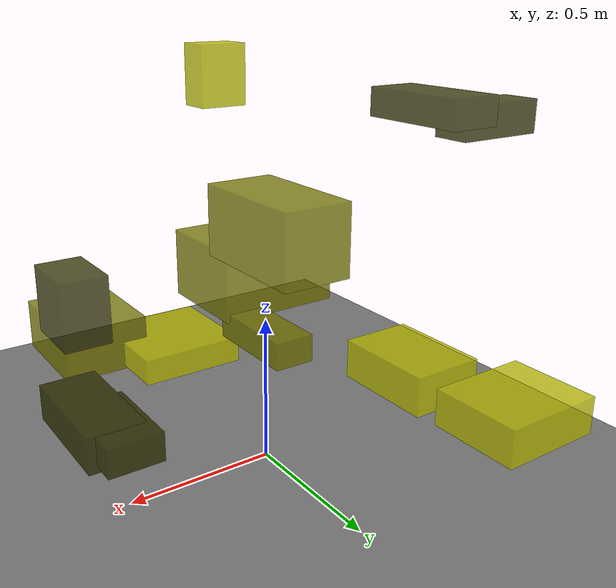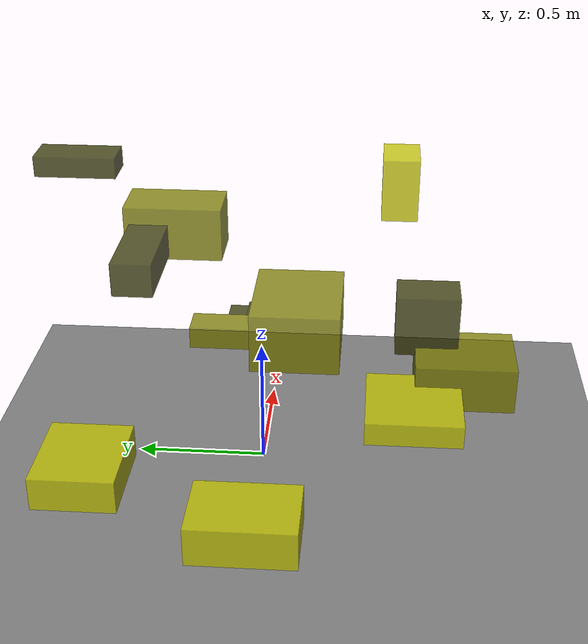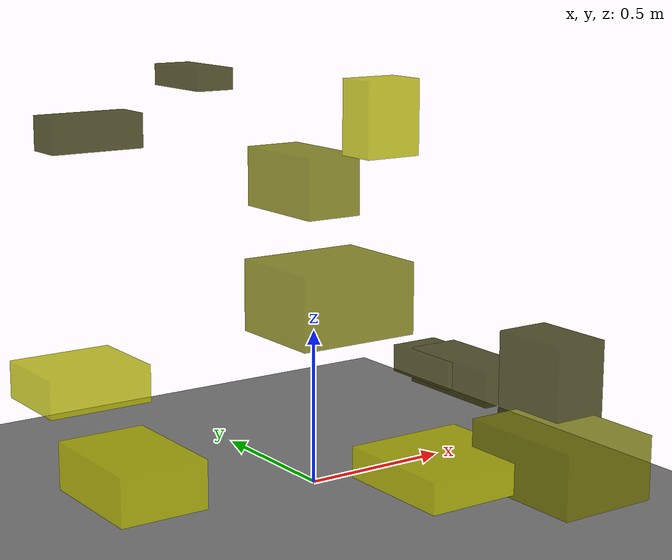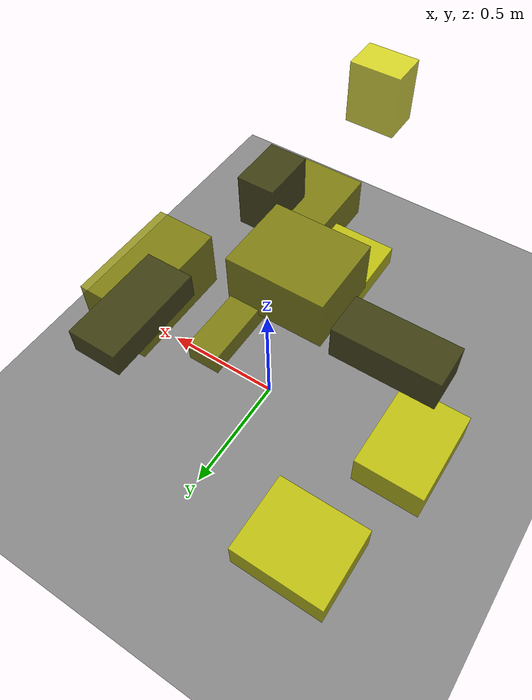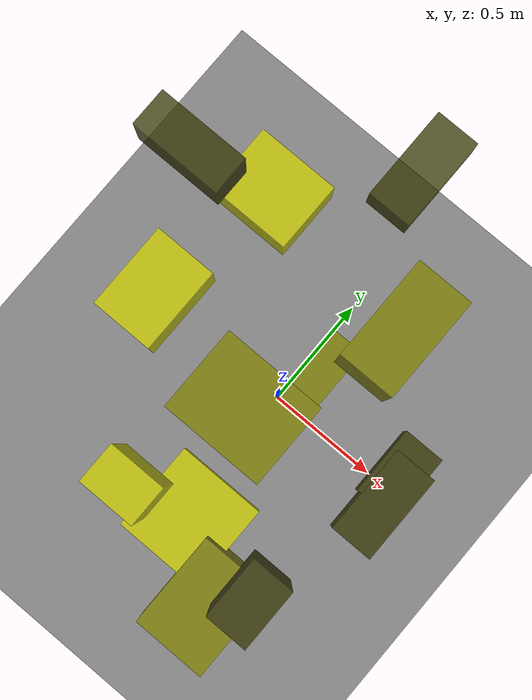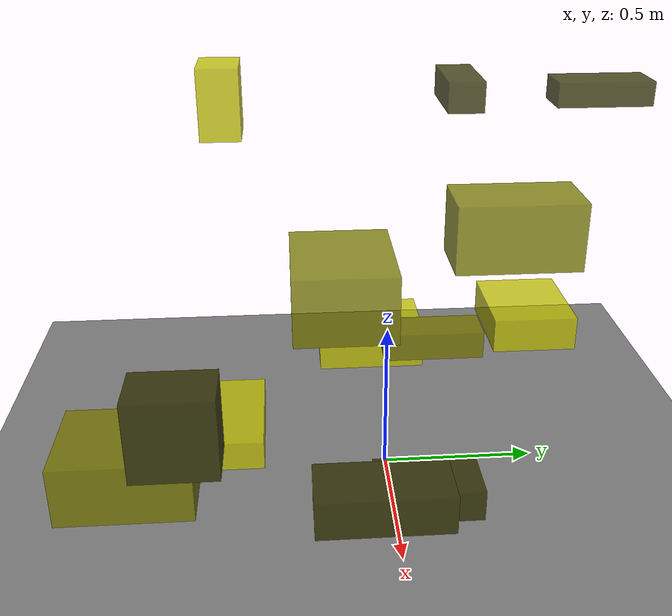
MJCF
<?xml version="1.0"?>
<mujoco model="obstacle_scene">
  <compiler angle="radian" coordinate="local"/>
  <option timestep="0.001" gravity="0 0 -9.81"/>

  <asset>
    <material name="obstacle_mat" rgba="0.8 0.8 0.0 0.8"/>
    <material name="ground_mat" rgba="0.5 0.5 0.5 1"/>
  </asset>

  <worldbody>
    <!-- Ground plane -->
    <geom name="ground" type="plane" size="3 3 0.1" material="ground_mat"/>

    <!-- Obstacles -->
    <body name="obstacle_0" pos="-0.057088 0.630143 1.251379">
      <geom name="obs_0" type="box" size="0.066839 0.142492 0.036172" rgba="0.2 0.2 0.0 0.8"/>
    </body>
    <body name="obstacle_1" pos="-0.043134 -0.141980 0.642639">
      <geom name="obs_1" type="box" size="0.198654 0.163523 0.112253" rgba="0.5 0.5 0.0 0.8"/>
    </body>
    <body name="obstacle_2" pos="-0.525145 0.592416 0.278112">
      <geom name="obs_2" type="box" size="0.180005 0.152590 0.063308" rgba="0.8 0.8 0.0 0.8"/>
    </body>
    <body name="obstacle_3" pos="-0.607670 0.313326 1.138015">
      <geom name="obs_3" type="box" size="0.150633 0.063059 0.053596" rgba="0.2 0.2 0.0 0.8"/>
    </body>
    <body name="obstacle_4" pos="0.084697 0.128533 0.514436">
      <geom name="obs_4" type="box" size="0.062075 0.153286 0.042467" rgba="0.5 0.5 0.0 0.8"/>
    </body>
    <body name="obstacle_5" pos="0.050894 -0.595228 0.208684">
      <geom name="obs_5" type="box" size="0.191306 0.191301 0.047421" rgba="0.8 0.8 0.0 0.8"/>
    </body>
    <body name="obstacle_6" pos="0.579731 -0.071055 0.286229">
      <geom name="obs_6" type="box" size="0.090767 0.193082 0.058972" rgba="0.2 0.2 0.0 0.8"/>
    </body>
    <body name="obstacle_7" pos="0.187970 0.339242 0.916182">
      <geom name="obs_7" type="box" size="0.099663 0.183514 0.101201" rgba="0.5 0.5 0.0 0.8"/>
    </body>
    <body name="obstacle_8" pos="-0.652512 0.001260 0.151902">
      <geom name="obs_8" type="box" size="0.142896 0.198690 0.076306" rgba="0.8 0.8 0.0 0.8"/>
    </body>
    <body name="obstacle_9" pos="0.557982 0.053806 0.294233">
      <geom name="obs_9" type="box" size="0.086896 0.146462 0.046256" rgba="0.2 0.2 0.0 0.8"/>
    </body>
    <body name="obstacle_10" pos="0.306961 -0.803264 0.244727">
      <geom name="obs_10" type="box" size="0.158013 0.202459 0.095970" rgba="0.5 0.5 0.0 0.8"/>
    </body>
    <body name="obstacle_11" pos="-0.119006 -0.497162 1.229076">
      <geom name="obs_11" type="box" size="0.085977 0.061114 0.106739" rgba="0.8 0.8 0.0 0.8"/>
    </body>
    <body name="obstacle_12" pos="0.407420 -0.645744 0.434798">
      <geom name="obs_12" type="box" size="0.088537 0.129136 0.128834" rgba="0.2 0.2 0.0 0.8"/>
    </body>
  </worldbody>
</mujoco>
